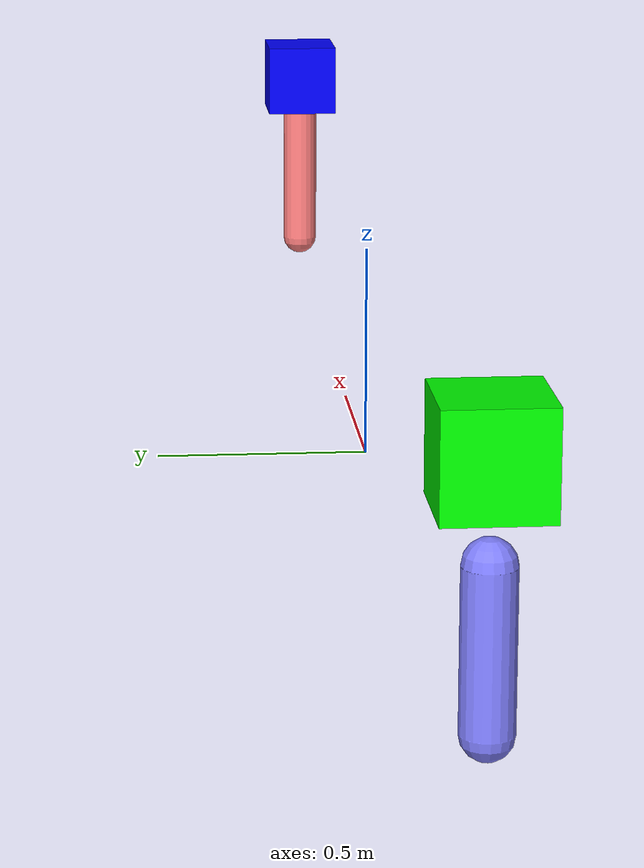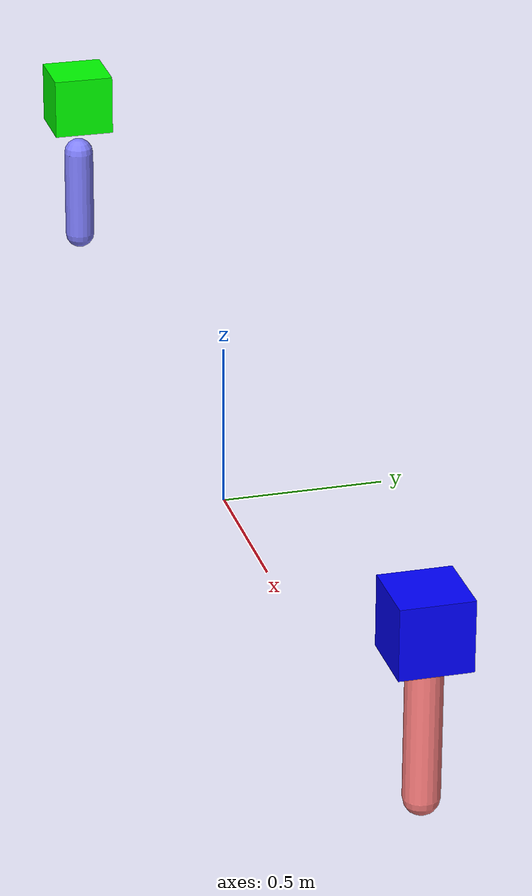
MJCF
<mujoco>
  <option gravity="0 0 -9.81"/>
  <worldbody>
    <body name="spring_1" pos="-2 0 0.1">
      <geom type="capsule" fromto="0 0 0 0 0 0.3" size="0.05" rgba="0.5 0.5 1 1"/>
    </body>
    <body name="block_1" pos="-2 0 0.6">
      <geom type="box" size="0.1 0.1 0.1" density="1" rgba="0 1 0 1"/>
      <joint type="slide" axis="0 0 1"/>
    </body>
    <body name="spring_2" pos="2 0 0.1">
      <geom type="capsule" fromto="0 0 0 0 0 0.5" size="0.05" rgba="1 0.5 0.5 1"/>
    </body>
    <body name="block_2" pos="2 0 0.6">
      <geom type="box" size="0.1 0.1 0.1" density="1" rgba="0 0 1 1"/>
      <joint type="slide" axis="0 0 1"/>
    </body>
  </worldbody>
</mujoco>
